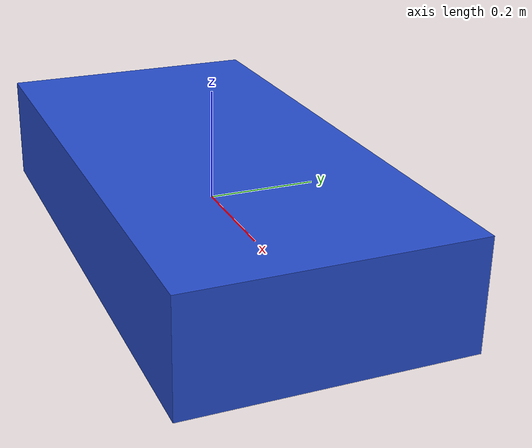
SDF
<?xml version="1.0" ?>
<sdf version="1.5">
  <model name="differential_car">
    <pose>0 0 0 0 0 0</pose>

    <link name="base_link">
      <inertial>
        <mass>10</mass>
        <inertia>
          <ixx>0.1</ixx>
          <ixy>0</ixy>
          <ixz>0</ixz>
          <iyy>0.1</iyy>
          <iyz>0</iyz>
          <izz>0.1</izz>
        </inertia>
      </inertial>

      <collision name="base_collision">
        <geometry>
          <box>
            <size>1 0.5 0.2</size>
          </box>
        </geometry>
      </collision>

      <visual name="base_visual">
        <geometry>
          <box>
            <size>1 0.5 0.2</size>
          </box>
        </geometry>

        <material>
          <script>
            <uri>file://media/materials/scripts/gazebo.material</uri>
            <name>Gazebo/Blue</name>
          </script>
        </material>
      </visual>
    </link>

    <link name="left_wheel">
      <inertial>
        <mass>1</mass>
        <inertia>
          <ixx>0.005</ixx>
          <ixy>0</ixy>
          <ixz>0</ixz>
          <iyy>0.005</iyy>
          <iyz>0</iyz>
          <izz>0.005</izz>
        </inertia>
      </inertial>

      <collision name="left_wheel_collision">
        <geometry>
          <cylinder>
            <radius>0.1</radius>
            <length>0.05</length>
          </cylinder>
        </geometry>

        <surface>
          <friction>
            <ode>
              <mu>0.2</mu>
              <mu2>0.1</mu2>
            </ode>
          </friction>
        </surface>
      </collision>

      <visual name="left_wheel_visual">
        <geometry>
          <cylinder>
            <radius>0.1</radius>
            <length>0.05</length>
          </cylinder>
        </geometry>

        <material>
          <script>
            <uri>file://media/materials/scripts/gazebo.material</uri>
            <name>Gazebo/Blue</name>
          </script>
        </material>
      </visual>
    </link>

    <link name="right_wheel">
      <inertial>
        <mass>1</mass>
        <inertia>
          <ixx>0.005</ixx>
          <ixy>0</ixy>
          <ixz>0</ixz>
          <iyy>0.005</iyy>
          <iyz>0</iyz>
          <izz>0.005</izz>
        </inertia>
      </inertial>

      <collision name="right_wheel_collision">
        <geometry>
          <cylinder>
            <radius>0.1</radius>
            <length>0.05</length>
          </cylinder>
        </geometry>

        <surface>
          <friction>
            <ode>
              <mu>0.2</mu>
              <mu2>0.1</mu2>
            </ode>
          </friction>
        </surface>
      </collision>

      <visual name="right_wheel_visual">
        <geometry>
          <cylinder>
            <radius>0.1</radius>
            <length>0.05</length>
          </cylinder>
        </geometry>

        <material>
          <script>
            <uri>file://media/materials/scripts/gazebo.material</uri>
            <name>Gazebo/Blue</name>
          </script>
        </material>
      </visual>
    </link>

    <joint name="left_wheel_joint" type="revolute">
      <parent>base_link</parent>
      <child>left_wheel</child>
      <axis>
        <xyz>0 0 1</xyz>
        <limit>
          <lower>-3.14</lower>
          <upper>3.14</upper>
          <effort>10</effort>
          <velocity>1</velocity>
        </limit>
      </axis>
      <physics>
        <ode>
          <damping>1</damping>
          <friction>0</friction>
        </ode>
      </physics>
    </joint>

    <joint name="right_wheel_joint" type="revolute">
      <parent>base_link</parent>
      <child>right_wheel</child>
      <axis>
        <xyz>0 0 1</xyz>
        <limit>
          <lower>-3.14</lower>
          <upper>3.14</upper>
          <effort>10</effort>
          <velocity>1</velocity>
        </limit>
      </axis>
      <physics>
        <ode>
          <damping>1</damping>
          <friction>0</friction>
        </ode>
      </physics>
    </joint>
  </model>
</sdf>
